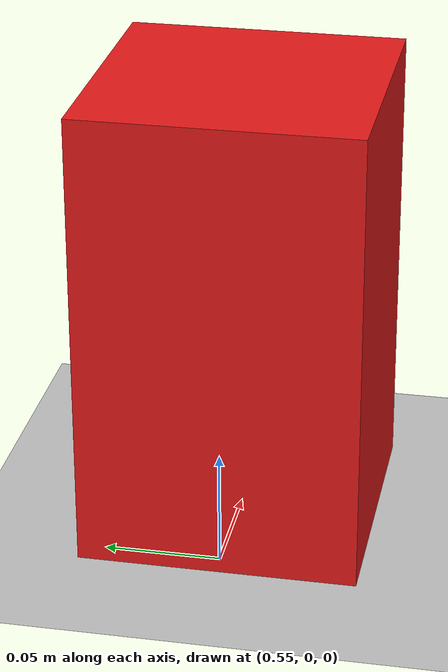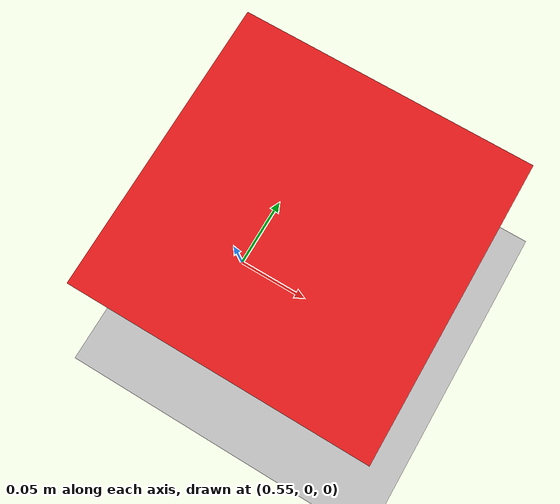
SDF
<?xml version="1.0" ?>
<sdf version="1.8">
  <world name="camera_ft_test">
    <physics name="default" type="ignored"/>
    <gravity>0 0 -9.8</gravity>
    <light name="sun" type="directional">
      <pose>0 0 10 0 0 0</pose>
      <diffuse>1 1 1 1</diffuse>
    </light>
    <model name="ground">
      <static>true</static>
      <link name="link">
        <collision name="collision">
          <geometry>
            <plane>
              <normal>0 0 1</normal>
              <size>5 5</size>
            </plane>
          </geometry>
        </collision>
        <visual name="visual">
          <geometry>
            <plane>
              <normal>0 0 1</normal>
              <size>5 5</size>
            </plane>
          </geometry>
          <material>
            <ambient>0.75 0.75 0.75 1</ambient>
          </material>
        </visual>
      </link>
    </model>
    <model name="target_box">
      <static>true</static>
      <pose>0.6 0 0.1 0 0 0</pose>
      <link name="link">
        <visual name="visual">
          <geometry>
            <box>
              <size>0.12 0.12 0.2</size>
            </box>
          </geometry>
          <material>
            <ambient>0.9 0.1 0.1 1</ambient>
            <diffuse>0.9 0.1 0.1 1</diffuse>
          </material>
        </visual>
      </link>
    </model>
  </world>
</sdf>
